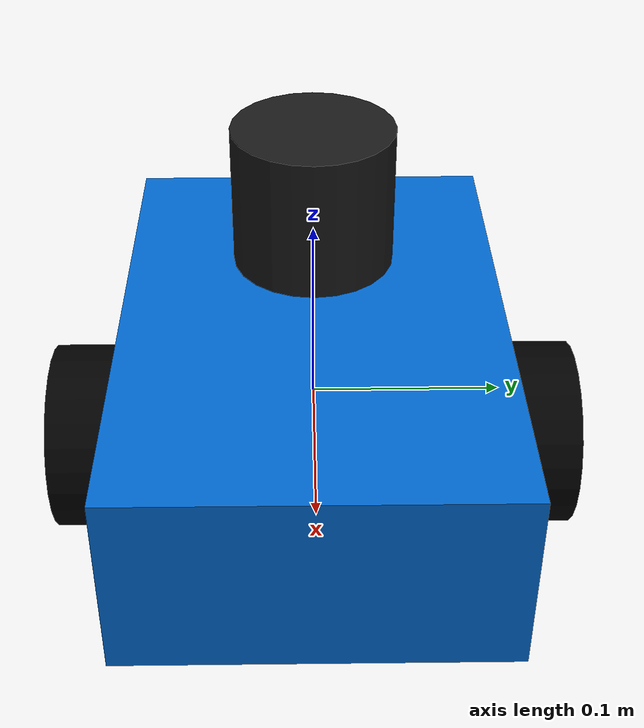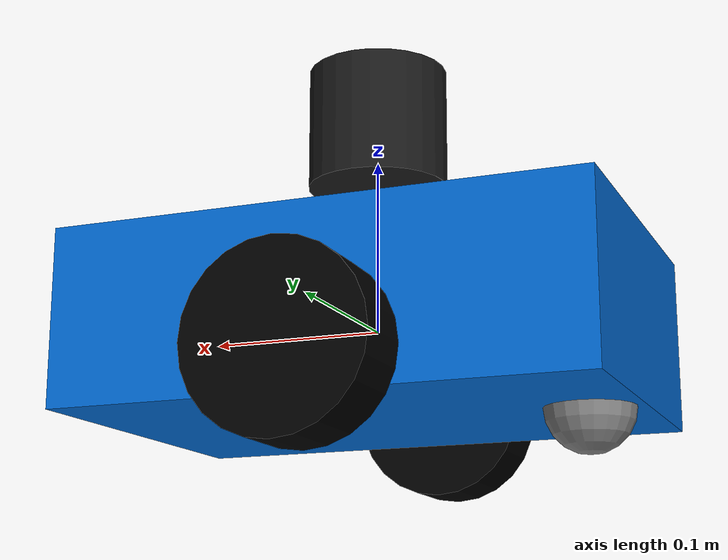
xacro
<?xml version="1.0"?>
<robot name="lidar_bot" xmlns:xacro="http://www.ros.org/wiki/xacro">

  <!-- ========== BASE LINK ========== -->
  <link name="base_link">
    <visual>
      <geometry><box size="0.3 0.2 0.1"/></geometry>
      <material name="blue"><color rgba="0.0 0.4 0.8 1"/></material>
    </visual>
    <collision>
      <geometry><box size="0.3 0.2 0.1"/></geometry>
    </collision>
    <inertial>
      <mass value="2.0"/>
      <inertia ixx="0.02" iyy="0.02" izz="0.02" ixy="0" ixz="0" iyz="0"/>
    </inertial>
  </link>

  <!-- ========== LEFT WHEEL ========== -->
  <link name="left_wheel">
    <visual>
      <geometry><cylinder radius="0.05" length="0.04"/></geometry>
      <material name="black"><color rgba="0 0 0 1"/></material>
    </visual>
    <collision>
      <geometry><cylinder radius="0.05" length="0.04"/></geometry>
    </collision>
    <inertial>
      <mass value="0.3"/>
      <inertia ixx="0.001" iyy="0.001" izz="0.001" ixy="0" ixz="0" iyz="0"/>
    </inertial>
  </link>

  <joint name="left_wheel_joint" type="continuous">
    <parent link="base_link"/>
    <child link="left_wheel"/>
    <origin xyz="0.0 0.12 -0.03" rpy="-1.5707 0 0"/>
    <axis xyz="0 0 1"/>
  </joint>

  <!-- ========== RIGHT WHEEL ========== -->
  <link name="right_wheel">
    <visual>
      <geometry><cylinder radius="0.05" length="0.04"/></geometry>
      <material name="black"><color rgba="0 0 0 1"/></material>
    </visual>
    <collision>
      <geometry><cylinder radius="0.05" length="0.04"/></geometry>
    </collision>
    <inertial>
      <mass value="0.3"/>
      <inertia ixx="0.001" iyy="0.001" izz="0.001" ixy="0" ixz="0" iyz="0"/>
    </inertial>
  </link>

  <joint name="right_wheel_joint" type="continuous">
    <parent link="base_link"/>
    <child link="right_wheel"/>
    <origin xyz="0.0 -0.12 -0.03" rpy="-1.5707 0 0"/>
    <axis xyz="0 0 1"/>
  </joint>

  <!-- ========== CASTER WHEEL ========== -->
  <link name="caster_wheel">
    <visual>
      <geometry><sphere radius="0.025"/></geometry>
      <material name="grey"><color rgba="0.5 0.5 0.5 1"/></material>
    </visual>
    <collision>
      <geometry><sphere radius="0.025"/></geometry>
    </collision>
    <inertial>
      <mass value="0.1"/>
      <inertia ixx="0.0001" iyy="0.0001" izz="0.0001" ixy="0" ixz="0" iyz="0"/>
    </inertial>
  </link>

  <joint name="caster_joint" type="fixed">
    <parent link="base_link"/>
    <child link="caster_wheel"/>
    <origin xyz="-0.12 0 -0.05" rpy="0 0 0"/>
  </joint>

  <!-- ========== VELODYNE VLP-16 LIDAR ========== -->
  <link name="velodyne_link">
    <visual>
      <geometry><cylinder radius="0.04" length="0.07"/></geometry>
      <material name="black"><color rgba="0.1 0.1 0.1 1"/></material>
    </visual>
    <collision>
      <geometry><cylinder radius="0.04" length="0.07"/></geometry>
    </collision>
    <inertial>
      <mass value="0.1"/>
      <inertia ixx="0.001" iyy="0.001" izz="0.001" ixy="0" ixz="0" iyz="0"/>
    </inertial>
  </link>

  <joint name="velodyne_joint" type="fixed">
    <parent link="base_link"/>
    <child link="velodyne_link"/>
    <origin xyz="0.0 0.0 0.12" rpy="0 0 0"/>
  </joint>

  <!-- ========== GAZEBO PLUGINS ========== -->

  <!-- Differential Drive -->
  <gazebo>
    <plugin name="diff_drive" filename="libgazebo_ros_diff_drive.so">
      <ros>
        <namespace>/lidar_bot</namespace>
      </ros>
      <left_joint>left_wheel_joint</left_joint>
      <right_joint>right_wheel_joint</right_joint>
      <wheel_separation>0.24</wheel_separation>
      <wheel_diameter>0.1</wheel_diameter>
      <max_wheel_torque>20</max_wheel_torque>
      <max_wheel_acceleration>1.0</max_wheel_acceleration>
      <command_topic>cmd_vel</command_topic>
      <publish_odom>true</publish_odom>
      <publish_odom_tf>true</publish_odom_tf>
      <publish_wheel_tf>true</publish_wheel_tf>
      <odometry_topic>odom</odometry_topic>
      <odometry_frame>odom</odometry_frame>
      <robot_base_frame>base_link</robot_base_frame>
    </plugin>
  </gazebo>

  <!-- Velodyne VLP-16 (16 channel 3D LiDAR) -->
  <gazebo reference="velodyne_link">
    <sensor name="velodyne" type="ray">
      <always_on>true</always_on>
      <visualize>false</visualize>
      <update_rate>10</update_rate>
      <ray>
        <scan>
          <horizontal>
            <samples>360</samples>
            <resolution>1</resolution>
            <min_angle>-3.14159</min_angle>
            <max_angle>3.14159</max_angle>
          </horizontal>
          <vertical>
            <samples>16</samples>
            <resolution>1</resolution>
            <min_angle>-0.2618</min_angle>
            <max_angle>0.2618</max_angle>
          </vertical>
        </scan>
        <range>
          <min>0.1</min>
          <max>100.0</max>
          <resolution>0.01</resolution>
        </range>
        <noise>
          <type>gaussian</type>
          <mean>0.0</mean>
          <stddev>0.01</stddev>
        </noise>
      </ray>
      <plugin name="velodyne_plugin" filename="libgazebo_ros_ray_sensor.so">
        <ros>
          <namespace>/lidar_bot</namespace>
          <remapping>~/out:=lidar/points</remapping>
        </ros>
        <output_type>sensor_msgs/PointCloud2</output_type>
        <frame_name>velodyne_link</frame_name>
      </plugin>
    </sensor>
  </gazebo>

  <!-- Wheel friction -->
  <gazebo reference="left_wheel">
    <mu1>1.0</mu1>
    <mu2>1.0</mu2>
  </gazebo>
  <gazebo reference="right_wheel">
    <mu1>1.0</mu1>
    <mu2>1.0</mu2>
  </gazebo>
  <gazebo reference="caster_wheel">
    <mu1>0.01</mu1>
    <mu2>0.01</mu2>
  </gazebo>

</robot>
